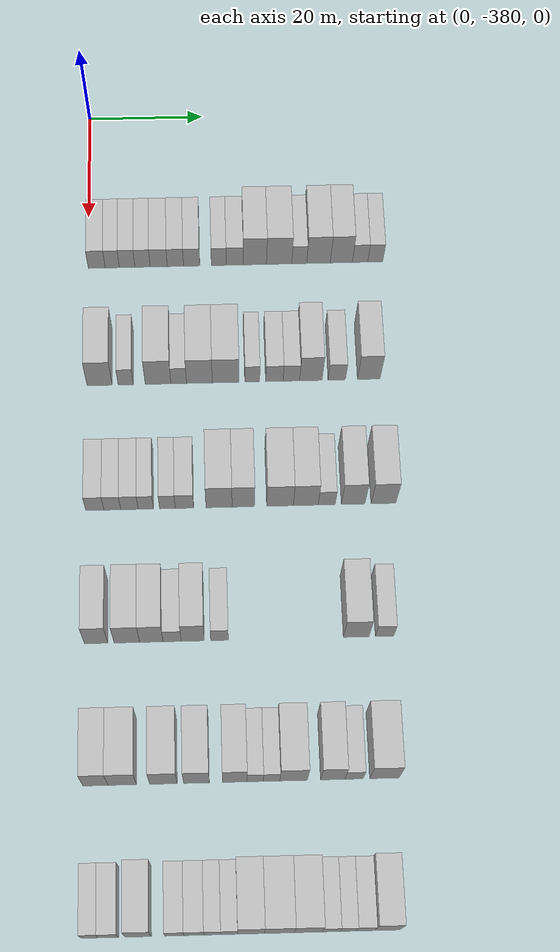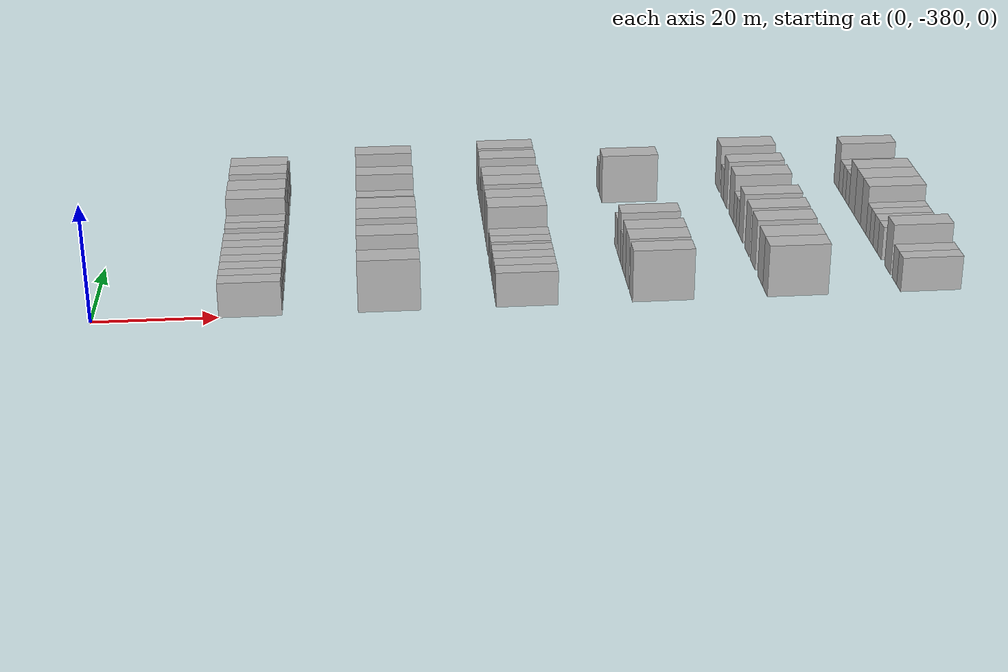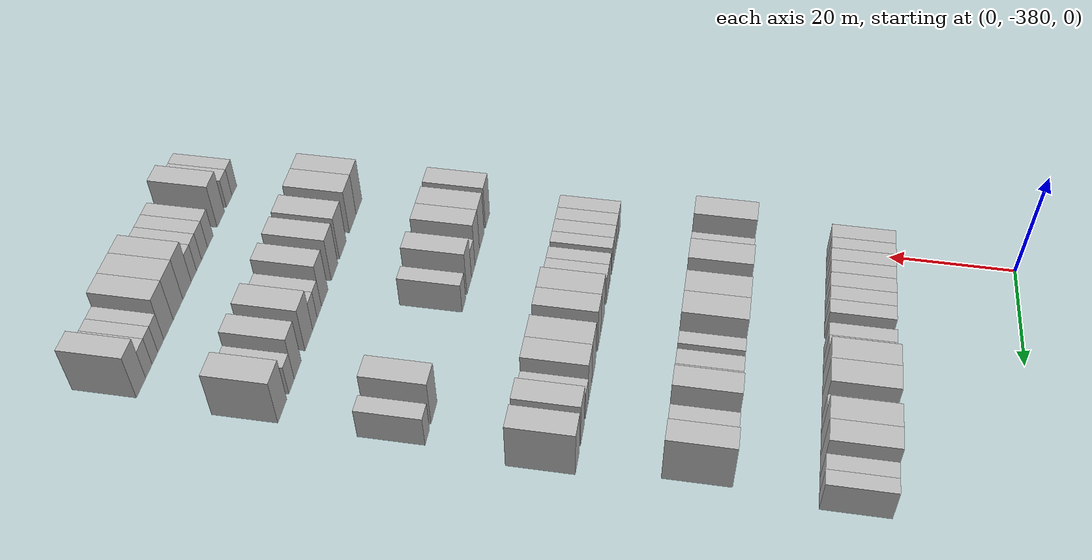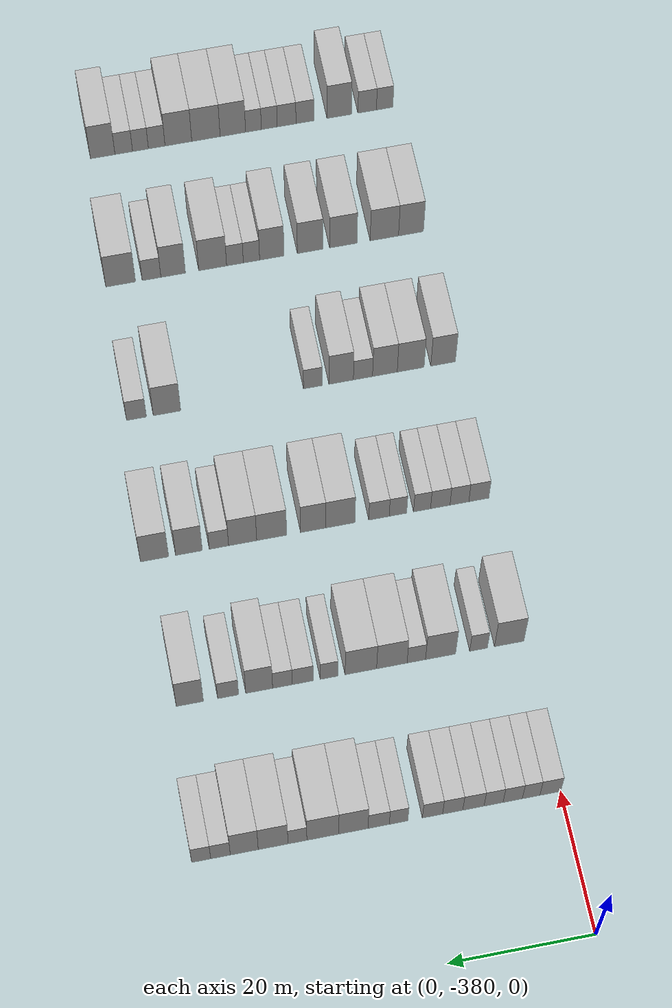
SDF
<sdf version="1.6">
 <world name="default">
  <model name="building_1">
   <static>1</static>
   <pose>25.0000 -378.5527 0 0.000000 0.000000 0.000000</pose>
   <link name="link">
    <pose>0 0 3.00 0 0 0</pose>
    <collision name="collision"><geometry><box><size>10.0000 2.8945 6.0000</size></box></geometry></collision>
    <visual name="visual">
     <cast_shadows>0</cast_shadows>
     <geometry><box><size>10.0000 2.8945 6.0000</size></box></geometry>
     <material>
      <script>
       <uri>model://HANNAS_wall/materials/scripts</uri>
       <uri>model://HANNAS_wall/materials/textures</uri>
       <name>vrc/HANNAS_wall</name>
      </script>
     </material>
    </visual>
   </link>
  </model>
  <model name="building_2">
   <static>1</static>
   <pose>25.0000 -375.8927 0 0.000000 0.000000 0.000000</pose>
   <link name="link">
    <pose>0 0 3.00 0 0 0</pose>
    <collision name="collision"><geometry><box><size>10.0000 2.4257 6.0000</size></box></geometry></collision>
    <visual name="visual">
     <cast_shadows>0</cast_shadows>
     <geometry><box><size>10.0000 2.4257 6.0000</size></box></geometry>
     <material>
      <script>
       <uri>model://HANNAS_wall/materials/scripts</uri>
       <uri>model://HANNAS_wall/materials/textures</uri>
       <name>vrc/HANNAS_wall</name>
      </script>
     </material>
    </visual>
   </link>
  </model>
  <model name="building_3">
   <static>1</static>
   <pose>25.0000 -373.3480 0 0.000000 0.000000 0.000000</pose>
   <link name="link">
    <pose>0 0 3.00 0 0 0</pose>
    <collision name="collision"><geometry><box><size>10.0000 2.6636 6.0000</size></box></geometry></collision>
    <visual name="visual">
     <cast_shadows>0</cast_shadows>
     <geometry><box><size>10.0000 2.6636 6.0000</size></box></geometry>
     <material>
      <script>
       <uri>model://HANNAS_wall/materials/scripts</uri>
       <uri>model://HANNAS_wall/materials/textures</uri>
       <name>vrc/HANNAS_wall</name>
      </script>
     </material>
    </visual>
   </link>
  </model>
  <model name="building_4">
   <static>1</static>
   <pose>25.0000 -370.7058 0 0.000000 0.000000 0.000000</pose>
   <link name="link">
    <pose>0 0 3.00 0 0 0</pose>
    <collision name="collision"><geometry><box><size>10.0000 2.6210 6.0000</size></box></geometry></collision>
    <visual name="visual">
     <cast_shadows>0</cast_shadows>
     <geometry><box><size>10.0000 2.6210 6.0000</size></box></geometry>
     <material>
      <script>
       <uri>model://HANNAS_wall/materials/scripts</uri>
       <uri>model://HANNAS_wall/materials/textures</uri>
       <name>vrc/HANNAS_wall</name>
      </script>
     </material>
    </visual>
   </link>
  </model>
  <model name="building_5">
   <static>1</static>
   <pose>25.0000 -367.9241 0 0.000000 0.000000 0.000000</pose>
   <link name="link">
    <pose>0 0 3.00 0 0 0</pose>
    <collision name="collision"><geometry><box><size>10.0000 2.9424 6.0000</size></box></geometry></collision>
    <visual name="visual">
     <cast_shadows>0</cast_shadows>
     <geometry><box><size>10.0000 2.9424 6.0000</size></box></geometry>
     <material>
      <script>
       <uri>model://HANNAS_wall/materials/scripts</uri>
       <uri>model://HANNAS_wall/materials/textures</uri>
       <name>vrc/HANNAS_wall</name>
      </script>
     </material>
    </visual>
   </link>
  </model>
  <model name="building_6">
   <static>1</static>
   <pose>25.0000 -365.0623 0 0.000000 0.000000 0.000000</pose>
   <link name="link">
    <pose>0 0 3.00 0 0 0</pose>
    <collision name="collision"><geometry><box><size>10.0000 2.7812 6.0000</size></box></geometry></collision>
    <visual name="visual">
     <cast_shadows>0</cast_shadows>
     <geometry><box><size>10.0000 2.7812 6.0000</size></box></geometry>
     <material>
      <script>
       <uri>model://HANNAS_wall/materials/scripts</uri>
       <uri>model://HANNAS_wall/materials/textures</uri>
       <name>vrc/HANNAS_wall</name>
      </script>
     </material>
    </visual>
   </link>
  </model>
  <model name="building_7">
   <static>1</static>
   <pose>25.0000 -362.2778 0 0.000000 0.000000 0.000000</pose>
   <link name="link">
    <pose>0 0 3.00 0 0 0</pose>
    <collision name="collision"><geometry><box><size>10.0000 2.7878 6.0000</size></box></geometry></collision>
    <visual name="visual">
     <cast_shadows>0</cast_shadows>
     <geometry><box><size>10.0000 2.7878 6.0000</size></box></geometry>
     <material>
      <script>
       <uri>model://HANNAS_wall/materials/scripts</uri>
       <uri>model://HANNAS_wall/materials/textures</uri>
       <name>vrc/HANNAS_wall</name>
      </script>
     </material>
    </visual>
   </link>
  </model>
  <model name="building_8">
   <static>1</static>
   <pose>25.0000 -357.6160 0 0.000000 0.000000 0.000000</pose>
   <link name="link">
    <pose>0 0 3.00 0 0 0</pose>
    <collision name="collision"><geometry><box><size>10.0000 2.5359 6.0000</size></box></geometry></collision>
    <visual name="visual">
     <cast_shadows>0</cast_shadows>
     <geometry><box><size>10.0000 2.5359 6.0000</size></box></geometry>
     <material>
      <script>
       <uri>model://HANNAS_wall/materials/scripts</uri>
       <uri>model://HANNAS_wall/materials/textures</uri>
       <name>vrc/HANNAS_wall</name>
      </script>
     </material>
    </visual>
   </link>
  </model>
  <model name="building_9">
   <static>1</static>
   <pose>25.0000 -354.8854 0 0.000000 0.000000 0.000000</pose>
   <link name="link">
    <pose>0 0 3.00 0 0 0</pose>
    <collision name="collision"><geometry><box><size>10.0000 2.9253 6.0000</size></box></geometry></collision>
    <visual name="visual">
     <cast_shadows>0</cast_shadows>
     <geometry><box><size>10.0000 2.9253 6.0000</size></box></geometry>
     <material>
      <script>
       <uri>model://HANNAS_wall/materials/scripts</uri>
       <uri>model://HANNAS_wall/materials/textures</uri>
       <name>vrc/HANNAS_wall</name>
      </script>
     </material>
    </visual>
   </link>
  </model>
  <model name="building_10">
   <static>1</static>
   <pose>25.0000 -351.4184 0 0.000000 0.000000 0.000000</pose>
   <link name="link">
    <pose>0 0 4.50 0 0 0</pose>
    <collision name="collision"><geometry><box><size>10.0000 4.0086 9.0000</size></box></geometry></collision>
    <visual name="visual">
     <cast_shadows>0</cast_shadows>
     <geometry><box><size>10.0000 4.0086 9.0000</size></box></geometry>
     <material>
      <script>
       <uri>model://HANNAS_wall/materials/scripts</uri>
       <uri>model://HANNAS_wall/materials/textures</uri>
       <name>vrc/HANNAS_wall</name>
      </script>
     </material>
    </visual>
   </link>
  </model>
  <model name="building_11">
   <static>1</static>
   <pose>25.0000 -347.2415 0 0.000000 0.000000 0.000000</pose>
   <link name="link">
    <pose>0 0 4.50 0 0 0</pose>
    <collision name="collision"><geometry><box><size>10.0000 4.3452 9.0000</size></box></geometry></collision>
    <visual name="visual">
     <cast_shadows>0</cast_shadows>
     <geometry><box><size>10.0000 4.3452 9.0000</size></box></geometry>
     <material>
      <script>
       <uri>model://HANNAS_wall/materials/scripts</uri>
       <uri>model://HANNAS_wall/materials/textures</uri>
       <name>vrc/HANNAS_wall</name>
      </script>
     </material>
    </visual>
   </link>
  </model>
  <model name="building_12">
   <static>1</static>
   <pose>25.0000 -343.7800 0 0.000000 0.000000 0.000000</pose>
   <link name="link">
    <pose>0 0 3.00 0 0 0</pose>
    <collision name="collision"><geometry><box><size>10.0000 2.5778 6.0000</size></box></geometry></collision>
    <visual name="visual">
     <cast_shadows>0</cast_shadows>
     <geometry><box><size>10.0000 2.5778 6.0000</size></box></geometry>
     <material>
      <script>
       <uri>model://HANNAS_wall/materials/scripts</uri>
       <uri>model://HANNAS_wall/materials/textures</uri>
       <name>vrc/HANNAS_wall</name>
      </script>
     </material>
    </visual>
   </link>
  </model>
  <model name="building_13">
   <static>1</static>
   <pose>25.0000 -340.4681 0 0.000000 0.000000 0.000000</pose>
   <link name="link">
    <pose>0 0 4.50 0 0 0</pose>
    <collision name="collision"><geometry><box><size>10.0000 4.0458 9.0000</size></box></geometry></collision>
    <visual name="visual">
     <cast_shadows>0</cast_shadows>
     <geometry><box><size>10.0000 4.0458 9.0000</size></box></geometry>
     <material>
      <script>
       <uri>model://HANNAS_wall/materials/scripts</uri>
       <uri>model://HANNAS_wall/materials/textures</uri>
       <name>vrc/HANNAS_wall</name>
      </script>
     </material>
    </visual>
   </link>
  </model>
  <model name="building_14">
   <static>1</static>
   <pose>25.0000 -336.5463 0 0.000000 0.000000 0.000000</pose>
   <link name="link">
    <pose>0 0 4.50 0 0 0</pose>
    <collision name="collision"><geometry><box><size>10.0000 3.7979 9.0000</size></box></geometry></collision>
    <visual name="visual">
     <cast_shadows>0</cast_shadows>
     <geometry><box><size>10.0000 3.7979 9.0000</size></box></geometry>
     <material>
      <script>
       <uri>model://HANNAS_wall/materials/scripts</uri>
       <uri>model://HANNAS_wall/materials/textures</uri>
       <name>vrc/HANNAS_wall</name>
      </script>
     </material>
    </visual>
   </link>
  </model>
  <model name="building_15">
   <static>1</static>
   <pose>25.0000 -333.3192 0 0.000000 0.000000 0.000000</pose>
   <link name="link">
    <pose>0 0 3.00 0 0 0</pose>
    <collision name="collision"><geometry><box><size>10.0000 2.6563 6.0000</size></box></geometry></collision>
    <visual name="visual">
     <cast_shadows>0</cast_shadows>
     <geometry><box><size>10.0000 2.6563 6.0000</size></box></geometry>
     <material>
      <script>
       <uri>model://HANNAS_wall/materials/scripts</uri>
       <uri>model://HANNAS_wall/materials/textures</uri>
       <name>vrc/HANNAS_wall</name>
      </script>
     </material>
    </visual>
   </link>
  </model>
  <model name="building_16">
   <static>1</static>
   <pose>25.0000 -330.6986 0 0.000000 0.000000 0.000000</pose>
   <link name="link">
    <pose>0 0 3.00 0 0 0</pose>
    <collision name="collision"><geometry><box><size>10.0000 2.5851 6.0000</size></box></geometry></collision>
    <visual name="visual">
     <cast_shadows>0</cast_shadows>
     <geometry><box><size>10.0000 2.5851 6.0000</size></box></geometry>
     <material>
      <script>
       <uri>model://HANNAS_wall/materials/scripts</uri>
       <uri>model://HANNAS_wall/materials/textures</uri>
       <name>vrc/HANNAS_wall</name>
      </script>
     </material>
    </visual>
   </link>
  </model>
  <model name="building_195">
   <static>1</static>
   <pose>47.0000 -377.9148 0 0.000000 0.000000 0.000000</pose>
   <link name="link">
    <pose>0 0 4.50 0 0 0</pose>
    <collision name="collision"><geometry><box><size>10.0000 4.1705 9.0000</size></box></geometry></collision>
    <visual name="visual">
     <cast_shadows>0</cast_shadows>
     <geometry><box><size>10.0000 4.1705 9.0000</size></box></geometry>
     <material>
      <script>
       <uri>model://HANNAS_wall/materials/scripts</uri>
       <uri>model://HANNAS_wall/materials/textures</uri>
       <name>vrc/HANNAS_wall</name>
      </script>
     </material>
    </visual>
   </link>
  </model>
  <model name="building_196">
   <static>1</static>
   <pose>47.0000 -373.5758 0 0.000000 0.000000 0.000000</pose>
   <link name="link">
    <pose>0 0 3.00 0 0 0</pose>
    <collision name="collision"><geometry><box><size>10.0000 2.5076 6.0000</size></box></geometry></collision>
    <visual name="visual">
     <cast_shadows>0</cast_shadows>
     <geometry><box><size>10.0000 2.5076 6.0000</size></box></geometry>
     <material>
      <script>
       <uri>model://HANNAS_wall/materials/scripts</uri>
       <uri>model://HANNAS_wall/materials/textures</uri>
       <name>vrc/HANNAS_wall</name>
      </script>
     </material>
    </visual>
   </link>
  </model>
  <model name="building_197">
   <static>1</static>
   <pose>47.0000 -368.1948 0 0.000000 0.000000 0.000000</pose>
   <link name="link">
    <pose>0 0 4.50 0 0 0</pose>
    <collision name="collision"><geometry><box><size>10.0000 4.2543 9.0000</size></box></geometry></collision>
    <visual name="visual">
     <cast_shadows>0</cast_shadows>
     <geometry><box><size>10.0000 4.2543 9.0000</size></box></geometry>
     <material>
      <script>
       <uri>model://HANNAS_wall/materials/scripts</uri>
       <uri>model://HANNAS_wall/materials/textures</uri>
       <name>vrc/HANNAS_wall</name>
      </script>
     </material>
    </visual>
   </link>
  </model>
  <model name="building_198">
   <static>1</static>
   <pose>47.0000 -364.7696 0 0.000000 0.000000 0.000000</pose>
   <link name="link">
    <pose>0 0 3.00 0 0 0</pose>
    <collision name="collision"><geometry><box><size>10.0000 2.5960 6.0000</size></box></geometry></collision>
    <visual name="visual">
     <cast_shadows>0</cast_shadows>
     <geometry><box><size>10.0000 2.5960 6.0000</size></box></geometry>
     <material>
      <script>
       <uri>model://HANNAS_wall/materials/scripts</uri>
       <uri>model://HANNAS_wall/materials/textures</uri>
       <name>vrc/HANNAS_wall</name>
      </script>
     </material>
    </visual>
   </link>
  </model>
  <model name="building_199">
   <static>1</static>
   <pose>47.0000 -361.3244 0 0.000000 0.000000 0.000000</pose>
   <link name="link">
    <pose>0 0 4.50 0 0 0</pose>
    <collision name="collision"><geometry><box><size>10.0000 4.2946 9.0000</size></box></geometry></collision>
    <visual name="visual">
     <cast_shadows>0</cast_shadows>
     <geometry><box><size>10.0000 4.2946 9.0000</size></box></geometry>
     <material>
      <script>
       <uri>model://HANNAS_wall/materials/scripts</uri>
       <uri>model://HANNAS_wall/materials/textures</uri>
       <name>vrc/HANNAS_wall</name>
      </script>
     </material>
    </visual>
   </link>
  </model>
  <model name="building_200">
   <static>1</static>
   <pose>47.0000 -356.9594 0 0.000000 0.000000 0.000000</pose>
   <link name="link">
    <pose>0 0 4.50 0 0 0</pose>
    <collision name="collision"><geometry><box><size>10.0000 4.4353 9.0000</size></box></geometry></collision>
    <visual name="visual">
     <cast_shadows>0</cast_shadows>
     <geometry><box><size>10.0000 4.4353 9.0000</size></box></geometry>
     <material>
      <script>
       <uri>model://HANNAS_wall/materials/scripts</uri>
       <uri>model://HANNAS_wall/materials/textures</uri>
       <name>vrc/HANNAS_wall</name>
      </script>
     </material>
    </visual>
   </link>
  </model>
  <model name="building_201">
   <static>1</static>
   <pose>47.0000 -352.5059 0 0.000000 0.000000 0.000000</pose>
   <link name="link">
    <pose>0 0 3.00 0 0 0</pose>
    <collision name="collision"><geometry><box><size>10.0000 2.4718 6.0000</size></box></geometry></collision>
    <visual name="visual">
     <cast_shadows>0</cast_shadows>
     <geometry><box><size>10.0000 2.4718 6.0000</size></box></geometry>
     <material>
      <script>
       <uri>model://HANNAS_wall/materials/scripts</uri>
       <uri>model://HANNAS_wall/materials/textures</uri>
       <name>vrc/HANNAS_wall</name>
      </script>
     </material>
    </visual>
   </link>
  </model>
  <model name="building_202">
   <static>1</static>
   <pose>47.0000 -348.8133 0 0.000000 0.000000 0.000000</pose>
   <link name="link">
    <pose>0 0 3.00 0 0 0</pose>
    <collision name="collision"><geometry><box><size>10.0000 2.9135 6.0000</size></box></geometry></collision>
    <visual name="visual">
     <cast_shadows>0</cast_shadows>
     <geometry><box><size>10.0000 2.9135 6.0000</size></box></geometry>
     <material>
      <script>
       <uri>model://HANNAS_wall/materials/scripts</uri>
       <uri>model://HANNAS_wall/materials/textures</uri>
       <name>vrc/HANNAS_wall</name>
      </script>
     </material>
    </visual>
   </link>
  </model>
  <model name="building_203">
   <static>1</static>
   <pose>47.0000 -345.9820 0 0.000000 0.000000 0.000000</pose>
   <link name="link">
    <pose>0 0 3.00 0 0 0</pose>
    <collision name="collision"><geometry><box><size>10.0000 2.7490 6.0000</size></box></geometry></collision>
    <visual name="visual">
     <cast_shadows>0</cast_shadows>
     <geometry><box><size>10.0000 2.7490 6.0000</size></box></geometry>
     <material>
      <script>
       <uri>model://HANNAS_wall/materials/scripts</uri>
       <uri>model://HANNAS_wall/materials/textures</uri>
       <name>vrc/HANNAS_wall</name>
      </script>
     </material>
    </visual>
   </link>
  </model>
  <model name="building_204">
   <static>1</static>
   <pose>47.0000 -342.7306 0 0.000000 0.000000 0.000000</pose>
   <link name="link">
    <pose>0 0 4.50 0 0 0</pose>
    <collision name="collision"><geometry><box><size>10.0000 3.7538 9.0000</size></box></geometry></collision>
    <visual name="visual">
     <cast_shadows>0</cast_shadows>
     <geometry><box><size>10.0000 3.7538 9.0000</size></box></geometry>
     <material>
      <script>
       <uri>model://HANNAS_wall/materials/scripts</uri>
       <uri>model://HANNAS_wall/materials/textures</uri>
       <name>vrc/HANNAS_wall</name>
      </script>
     </material>
    </visual>
   </link>
  </model>
  <model name="building_205">
   <static>1</static>
   <pose>47.0000 -338.3987 0 0.000000 0.000000 0.000000</pose>
   <link name="link">
    <pose>0 0 3.00 0 0 0</pose>
    <collision name="collision"><geometry><box><size>10.0000 2.9100 6.0000</size></box></geometry></collision>
    <visual name="visual">
     <cast_shadows>0</cast_shadows>
     <geometry><box><size>10.0000 2.9100 6.0000</size></box></geometry>
     <material>
      <script>
       <uri>model://HANNAS_wall/materials/scripts</uri>
       <uri>model://HANNAS_wall/materials/textures</uri>
       <name>vrc/HANNAS_wall</name>
      </script>
     </material>
    </visual>
   </link>
  </model>
  <model name="building_206">
   <static>1</static>
   <pose>47.0000 -333.0621 0 0.000000 0.000000 0.000000</pose>
   <link name="link">
    <pose>0 0 4.50 0 0 0</pose>
    <collision name="collision"><geometry><box><size>10.0000 3.7633 9.0000</size></box></geometry></collision>
    <visual name="visual">
     <cast_shadows>0</cast_shadows>
     <geometry><box><size>10.0000 3.7633 9.0000</size></box></geometry>
     <material>
      <script>
       <uri>model://HANNAS_wall/materials/scripts</uri>
       <uri>model://HANNAS_wall/materials/textures</uri>
       <name>vrc/HANNAS_wall</name>
      </script>
     </material>
    </visual>
   </link>
  </model>
  <model name="building_380">
   <static>1</static>
   <pose>69.0000 -378.5504 0 0.000000 0.000000 0.000000</pose>
   <link name="link">
    <pose>0 0 3.00 0 0 0</pose>
    <collision name="collision"><geometry><box><size>10.0000 2.8992 6.0000</size></box></geometry></collision>
    <visual name="visual">
     <cast_shadows>0</cast_shadows>
     <geometry><box><size>10.0000 2.8992 6.0000</size></box></geometry>
     <material>
      <script>
       <uri>model://HANNAS_wall/materials/scripts</uri>
       <uri>model://HANNAS_wall/materials/textures</uri>
       <name>vrc/HANNAS_wall</name>
      </script>
     </material>
    </visual>
   </link>
  </model>
  <model name="building_381">
   <static>1</static>
   <pose>69.0000 -375.7349 0 0.000000 0.000000 0.000000</pose>
   <link name="link">
    <pose>0 0 3.00 0 0 0</pose>
    <collision name="collision"><geometry><box><size>10.0000 2.7317 6.0000</size></box></geometry></collision>
    <visual name="visual">
     <cast_shadows>0</cast_shadows>
     <geometry><box><size>10.0000 2.7317 6.0000</size></box></geometry>
     <material>
      <script>
       <uri>model://HANNAS_wall/materials/scripts</uri>
       <uri>model://HANNAS_wall/materials/textures</uri>
       <name>vrc/HANNAS_wall</name>
      </script>
     </material>
    </visual>
   </link>
  </model>
  <model name="building_382">
   <static>1</static>
   <pose>69.0000 -372.9590 0 0.000000 0.000000 0.000000</pose>
   <link name="link">
    <pose>0 0 3.00 0 0 0</pose>
    <collision name="collision"><geometry><box><size>10.0000 2.8202 6.0000</size></box></geometry></collision>
    <visual name="visual">
     <cast_shadows>0</cast_shadows>
     <geometry><box><size>10.0000 2.8202 6.0000</size></box></geometry>
     <material>
      <script>
       <uri>model://HANNAS_wall/materials/scripts</uri>
       <uri>model://HANNAS_wall/materials/textures</uri>
       <name>vrc/HANNAS_wall</name>
      </script>
     </material>
    </visual>
   </link>
  </model>
  <model name="building_383">
   <static>1</static>
   <pose>69.0000 -370.3206 0 0.000000 0.000000 0.000000</pose>
   <link name="link">
    <pose>0 0 3.00 0 0 0</pose>
    <collision name="collision"><geometry><box><size>10.0000 2.4566 6.0000</size></box></geometry></collision>
    <visual name="visual">
     <cast_shadows>0</cast_shadows>
     <geometry><box><size>10.0000 2.4566 6.0000</size></box></geometry>
     <material>
      <script>
       <uri>model://HANNAS_wall/materials/scripts</uri>
       <uri>model://HANNAS_wall/materials/textures</uri>
       <name>vrc/HANNAS_wall</name>
      </script>
     </material>
    </visual>
   </link>
  </model>
  <model name="building_384">
   <static>1</static>
   <pose>69.0000 -366.8321 0 0.000000 0.000000 0.000000</pose>
   <link name="link">
    <pose>0 0 3.00 0 0 0</pose>
    <collision name="collision"><geometry><box><size>10.0000 2.5205 6.0000</size></box></geometry></collision>
    <visual name="visual">
     <cast_shadows>0</cast_shadows>
     <geometry><box><size>10.0000 2.5205 6.0000</size></box></geometry>
     <material>
      <script>
       <uri>model://HANNAS_wall/materials/scripts</uri>
       <uri>model://HANNAS_wall/materials/textures</uri>
       <name>vrc/HANNAS_wall</name>
      </script>
     </material>
    </visual>
   </link>
  </model>
  <model name="building_385">
   <static>1</static>
   <pose>69.0000 -364.0967 0 0.000000 0.000000 0.000000</pose>
   <link name="link">
    <pose>0 0 3.00 0 0 0</pose>
    <collision name="collision"><geometry><box><size>10.0000 2.9502 6.0000</size></box></geometry></collision>
    <visual name="visual">
     <cast_shadows>0</cast_shadows>
     <geometry><box><size>10.0000 2.9502 6.0000</size></box></geometry>
     <material>
      <script>
       <uri>model://HANNAS_wall/materials/scripts</uri>
       <uri>model://HANNAS_wall/materials/textures</uri>
       <name>vrc/HANNAS_wall</name>
      </script>
     </material>
    </visual>
   </link>
  </model>
  <model name="building_386">
   <static>1</static>
   <pose>69.0000 -358.5275 0 0.000000 0.000000 0.000000</pose>
   <link name="link">
    <pose>0 0 4.50 0 0 0</pose>
    <collision name="collision"><geometry><box><size>10.0000 4.1882 9.0000</size></box></geometry></collision>
    <visual name="visual">
     <cast_shadows>0</cast_shadows>
     <geometry><box><size>10.0000 4.1882 9.0000</size></box></geometry>
     <material>
      <script>
       <uri>model://HANNAS_wall/materials/scripts</uri>
       <uri>model://HANNAS_wall/materials/textures</uri>
       <name>vrc/HANNAS_wall</name>
      </script>
     </material>
    </visual>
   </link>
  </model>
  <model name="building_387">
   <static>1</static>
   <pose>69.0000 -354.6218 0 0.000000 0.000000 0.000000</pose>
   <link name="link">
    <pose>0 0 4.50 0 0 0</pose>
    <collision name="collision"><geometry><box><size>10.0000 3.6233 9.0000</size></box></geometry></collision>
    <visual name="visual">
     <cast_shadows>0</cast_shadows>
     <geometry><box><size>10.0000 3.6233 9.0000</size></box></geometry>
     <material>
      <script>
       <uri>model://HANNAS_wall/materials/scripts</uri>
       <uri>model://HANNAS_wall/materials/textures</uri>
       <name>vrc/HANNAS_wall</name>
      </script>
     </material>
    </visual>
   </link>
  </model>
  <model name="building_388">
   <static>1</static>
   <pose>69.0000 -348.6689 0 0.000000 0.000000 0.000000</pose>
   <link name="link">
    <pose>0 0 4.50 0 0 0</pose>
    <collision name="collision"><geometry><box><size>10.0000 4.2824 9.0000</size></box></geometry></collision>
    <visual name="visual">
     <cast_shadows>0</cast_shadows>
     <geometry><box><size>10.0000 4.2824 9.0000</size></box></geometry>
     <material>
      <script>
       <uri>model://HANNAS_wall/materials/scripts</uri>
       <uri>model://HANNAS_wall/materials/textures</uri>
       <name>vrc/HANNAS_wall</name>
      </script>
     </material>
    </visual>
   </link>
  </model>
  <model name="building_389">
   <static>1</static>
   <pose>69.0000 -344.5148 0 0.000000 0.000000 0.000000</pose>
   <link name="link">
    <pose>0 0 4.50 0 0 0</pose>
    <collision name="collision"><geometry><box><size>10.0000 4.0257 9.0000</size></box></geometry></collision>
    <visual name="visual">
     <cast_shadows>0</cast_shadows>
     <geometry><box><size>10.0000 4.0257 9.0000</size></box></geometry>
     <material>
      <script>
       <uri>model://HANNAS_wall/materials/scripts</uri>
       <uri>model://HANNAS_wall/materials/textures</uri>
       <name>vrc/HANNAS_wall</name>
      </script>
     </material>
    </visual>
   </link>
  </model>
  <model name="building_390">
   <static>1</static>
   <pose>69.0000 -341.1238 0 0.000000 0.000000 0.000000</pose>
   <link name="link">
    <pose>0 0 3.00 0 0 0</pose>
    <collision name="collision"><geometry><box><size>10.0000 2.7564 6.0000</size></box></geometry></collision>
    <visual name="visual">
     <cast_shadows>0</cast_shadows>
     <geometry><box><size>10.0000 2.7564 6.0000</size></box></geometry>
     <material>
      <script>
       <uri>model://HANNAS_wall/materials/scripts</uri>
       <uri>model://HANNAS_wall/materials/textures</uri>
       <name>vrc/HANNAS_wall</name>
      </script>
     </material>
    </visual>
   </link>
  </model>
  <model name="building_391">
   <static>1</static>
   <pose>69.0000 -336.8450 0 0.000000 0.000000 0.000000</pose>
   <link name="link">
    <pose>0 0 4.50 0 0 0</pose>
    <collision name="collision"><geometry><box><size>10.0000 3.8011 9.0000</size></box></geometry></collision>
    <visual name="visual">
     <cast_shadows>0</cast_shadows>
     <geometry><box><size>10.0000 3.8011 9.0000</size></box></geometry>
     <material>
      <script>
       <uri>model://HANNAS_wall/materials/scripts</uri>
       <uri>model://HANNAS_wall/materials/textures</uri>
       <name>vrc/HANNAS_wall</name>
      </script>
     </material>
    </visual>
   </link>
  </model>
  <model name="building_392">
   <static>1</static>
   <pose>69.0000 -331.9392 0 0.000000 0.000000 0.000000</pose>
   <link name="link">
    <pose>0 0 4.50 0 0 0</pose>
    <collision name="collision"><geometry><box><size>10.0000 4.0106 9.0000</size></box></geometry></collision>
    <visual name="visual">
     <cast_shadows>0</cast_shadows>
     <geometry><box><size>10.0000 4.0106 9.0000</size></box></geometry>
     <material>
      <script>
       <uri>model://HANNAS_wall/materials/scripts</uri>
       <uri>model://HANNAS_wall/materials/textures</uri>
       <name>vrc/HANNAS_wall</name>
      </script>
     </material>
    </visual>
   </link>
  </model>
  <model name="building_573">
   <static>1</static>
   <pose>91.0000 -378.1768 0 0.000000 0.000000 0.000000</pose>
   <link name="link">
    <pose>0 0 4.50 0 0 0</pose>
    <collision name="collision"><geometry><box><size>10.0000 3.6464 9.0000</size></box></geometry></collision>
    <visual name="visual">
     <cast_shadows>0</cast_shadows>
     <geometry><box><size>10.0000 3.6464 9.0000</size></box></geometry>
     <material>
      <script>
       <uri>model://HANNAS_wall/materials/scripts</uri>
       <uri>model://HANNAS_wall/materials/textures</uri>
       <name>vrc/HANNAS_wall</name>
      </script>
     </material>
    </visual>
   </link>
  </model>
  <model name="building_574">
   <static>1</static>
   <pose>91.0000 -373.3660 0 0.000000 0.000000 0.000000</pose>
   <link name="link">
    <pose>0 0 4.50 0 0 0</pose>
    <collision name="collision"><geometry><box><size>10.0000 3.9752 9.0000</size></box></geometry></collision>
    <visual name="visual">
     <cast_shadows>0</cast_shadows>
     <geometry><box><size>10.0000 3.9752 9.0000</size></box></geometry>
     <material>
      <script>
       <uri>model://HANNAS_wall/materials/scripts</uri>
       <uri>model://HANNAS_wall/materials/textures</uri>
       <name>vrc/HANNAS_wall</name>
      </script>
     </material>
    </visual>
   </link>
  </model>
  <model name="building_575">
   <static>1</static>
   <pose>91.0000 -369.5500 0 0.000000 0.000000 0.000000</pose>
   <link name="link">
    <pose>0 0 4.50 0 0 0</pose>
    <collision name="collision"><geometry><box><size>10.0000 3.6569 9.0000</size></box></geometry></collision>
    <visual name="visual">
     <cast_shadows>0</cast_shadows>
     <geometry><box><size>10.0000 3.6569 9.0000</size></box></geometry>
     <material>
      <script>
       <uri>model://HANNAS_wall/materials/scripts</uri>
       <uri>model://HANNAS_wall/materials/textures</uri>
       <name>vrc/HANNAS_wall</name>
      </script>
     </material>
    </visual>
   </link>
  </model>
  <model name="building_576">
   <static>1</static>
   <pose>91.0000 -366.3084 0 0.000000 0.000000 0.000000</pose>
   <link name="link">
    <pose>0 0 3.00 0 0 0</pose>
    <collision name="collision"><geometry><box><size>10.0000 2.8262 6.0000</size></box></geometry></collision>
    <visual name="visual">
     <cast_shadows>0</cast_shadows>
     <geometry><box><size>10.0000 2.8262 6.0000</size></box></geometry>
     <material>
      <script>
       <uri>model://HANNAS_wall/materials/scripts</uri>
       <uri>model://HANNAS_wall/materials/textures</uri>
       <name>vrc/HANNAS_wall</name>
      </script>
     </material>
    </visual>
   </link>
  </model>
  <model name="building_577">
   <static>1</static>
   <pose>91.0000 -363.0922 0 0.000000 0.000000 0.000000</pose>
   <link name="link">
    <pose>0 0 4.50 0 0 0</pose>
    <collision name="collision"><geometry><box><size>10.0000 3.6061 9.0000</size></box></geometry></collision>
    <visual name="visual">
     <cast_shadows>0</cast_shadows>
     <geometry><box><size>10.0000 3.6061 9.0000</size></box></geometry>
     <material>
      <script>
       <uri>model://HANNAS_wall/materials/scripts</uri>
       <uri>model://HANNAS_wall/materials/textures</uri>
       <name>vrc/HANNAS_wall</name>
      </script>
     </material>
    </visual>
   </link>
  </model>
  <model name="building_578">
   <static>1</static>
   <pose>91.0000 -358.9130 0 0.000000 0.000000 0.000000</pose>
   <link name="link">
    <pose>0 0 3.00 0 0 0</pose>
    <collision name="collision"><geometry><box><size>10.0000 2.7523 6.0000</size></box></geometry></collision>
    <visual name="visual">
     <cast_shadows>0</cast_shadows>
     <geometry><box><size>10.0000 2.7523 6.0000</size></box></geometry>
     <material>
      <script>
       <uri>model://HANNAS_wall/materials/scripts</uri>
       <uri>model://HANNAS_wall/materials/textures</uri>
       <name>vrc/HANNAS_wall</name>
      </script>
     </material>
    </visual>
   </link>
  </model>
  <model name="building_579">
   <static>1</static>
   <pose>91.0000 -337.5340 0 0.000000 0.000000 0.000000</pose>
   <link name="link">
    <pose>0 0 4.50 0 0 0</pose>
    <collision name="collision"><geometry><box><size>10.0000 4.0019 9.0000</size></box></geometry></collision>
    <visual name="visual">
     <cast_shadows>0</cast_shadows>
     <geometry><box><size>10.0000 4.0019 9.0000</size></box></geometry>
     <material>
      <script>
       <uri>model://HANNAS_wall/materials/scripts</uri>
       <uri>model://HANNAS_wall/materials/textures</uri>
       <name>vrc/HANNAS_wall</name>
      </script>
     </material>
    </visual>
   </link>
  </model>
  <model name="building_580">
   <static>1</static>
   <pose>91.0000 -333.0853 0 0.000000 0.000000 0.000000</pose>
   <link name="link">
    <pose>0 0 3.00 0 0 0</pose>
    <collision name="collision"><geometry><box><size>10.0000 2.8953 6.0000</size></box></geometry></collision>
    <visual name="visual">
     <cast_shadows>0</cast_shadows>
     <geometry><box><size>10.0000 2.8953 6.0000</size></box></geometry>
     <material>
      <script>
       <uri>model://HANNAS_wall/materials/scripts</uri>
       <uri>model://HANNAS_wall/materials/textures</uri>
       <name>vrc/HANNAS_wall</name>
      </script>
     </material>
    </visual>
   </link>
  </model>
  <model name="building_745">
   <static>1</static>
   <pose>113.0000 -378.1132 0 0.000000 0.000000 0.000000</pose>
   <link name="link">
    <pose>0 0 4.50 0 0 0</pose>
    <collision name="collision"><geometry><box><size>10.0000 3.7736 9.0000</size></box></geometry></collision>
    <visual name="visual">
     <cast_shadows>0</cast_shadows>
     <geometry><box><size>10.0000 3.7736 9.0000</size></box></geometry>
     <material>
      <script>
       <uri>model://HANNAS_wall/materials/scripts</uri>
       <uri>model://HANNAS_wall/materials/textures</uri>
       <name>vrc/HANNAS_wall</name>
      </script>
     </material>
    </visual>
   </link>
  </model>
  <model name="building_746">
   <static>1</static>
   <pose>113.0000 -374.0739 0 0.000000 0.000000 0.000000</pose>
   <link name="link">
    <pose>0 0 4.50 0 0 0</pose>
    <collision name="collision"><geometry><box><size>10.0000 4.3049 9.0000</size></box></geometry></collision>
    <visual name="visual">
     <cast_shadows>0</cast_shadows>
     <geometry><box><size>10.0000 4.3049 9.0000</size></box></geometry>
     <material>
      <script>
       <uri>model://HANNAS_wall/materials/scripts</uri>
       <uri>model://HANNAS_wall/materials/textures</uri>
       <name>vrc/HANNAS_wall</name>
      </script>
     </material>
    </visual>
   </link>
  </model>
  <model name="building_747">
   <static>1</static>
   <pose>113.0000 -367.8535 0 0.000000 0.000000 0.000000</pose>
   <link name="link">
    <pose>0 0 4.50 0 0 0</pose>
    <collision name="collision"><geometry><box><size>10.0000 4.1359 9.0000</size></box></geometry></collision>
    <visual name="visual">
     <cast_shadows>0</cast_shadows>
     <geometry><box><size>10.0000 4.1359 9.0000</size></box></geometry>
     <material>
      <script>
       <uri>model://HANNAS_wall/materials/scripts</uri>
       <uri>model://HANNAS_wall/materials/textures</uri>
       <name>vrc/HANNAS_wall</name>
      </script>
     </material>
    </visual>
   </link>
  </model>
  <model name="building_748">
   <static>1</static>
   <pose>113.0000 -362.8537 0 0.000000 0.000000 0.000000</pose>
   <link name="link">
    <pose>0 0 4.50 0 0 0</pose>
    <collision name="collision"><geometry><box><size>10.0000 3.8638 9.0000</size></box></geometry></collision>
    <visual name="visual">
     <cast_shadows>0</cast_shadows>
     <geometry><box><size>10.0000 3.8638 9.0000</size></box></geometry>
     <material>
      <script>
       <uri>model://HANNAS_wall/materials/scripts</uri>
       <uri>model://HANNAS_wall/materials/textures</uri>
       <name>vrc/HANNAS_wall</name>
      </script>
     </material>
    </visual>
   </link>
  </model>
  <model name="building_749">
   <static>1</static>
   <pose>113.0000 -357.0854 0 0.000000 0.000000 0.000000</pose>
   <link name="link">
    <pose>0 0 4.50 0 0 0</pose>
    <collision name="collision"><geometry><box><size>10.0000 3.6727 9.0000</size></box></geometry></collision>
    <visual name="visual">
     <cast_shadows>0</cast_shadows>
     <geometry><box><size>10.0000 3.6727 9.0000</size></box></geometry>
     <material>
      <script>
       <uri>model://HANNAS_wall/materials/scripts</uri>
       <uri>model://HANNAS_wall/materials/textures</uri>
       <name>vrc/HANNAS_wall</name>
      </script>
     </material>
    </visual>
   </link>
  </model>
  <model name="building_750">
   <static>1</static>
   <pose>113.0000 -354.0242 0 0.000000 0.000000 0.000000</pose>
   <link name="link">
    <pose>0 0 3.00 0 0 0</pose>
    <collision name="collision"><geometry><box><size>10.0000 2.4497 6.0000</size></box></geometry></collision>
    <visual name="visual">
     <cast_shadows>0</cast_shadows>
     <geometry><box><size>10.0000 2.4497 6.0000</size></box></geometry>
     <material>
      <script>
       <uri>model://HANNAS_wall/materials/scripts</uri>
       <uri>model://HANNAS_wall/materials/textures</uri>
       <name>vrc/HANNAS_wall</name>
      </script>
     </material>
    </visual>
   </link>
  </model>
  <model name="building_751">
   <static>1</static>
   <pose>113.0000 -351.5427 0 0.000000 0.000000 0.000000</pose>
   <link name="link">
    <pose>0 0 3.00 0 0 0</pose>
    <collision name="collision"><geometry><box><size>10.0000 2.5133 6.0000</size></box></geometry></collision>
    <visual name="visual">
     <cast_shadows>0</cast_shadows>
     <geometry><box><size>10.0000 2.5133 6.0000</size></box></geometry>
     <material>
      <script>
       <uri>model://HANNAS_wall/materials/scripts</uri>
       <uri>model://HANNAS_wall/materials/textures</uri>
       <name>vrc/HANNAS_wall</name>
      </script>
     </material>
    </visual>
   </link>
  </model>
  <model name="building_752">
   <static>1</static>
   <pose>113.0000 -348.1999 0 0.000000 0.000000 0.000000</pose>
   <link name="link">
    <pose>0 0 4.50 0 0 0</pose>
    <collision name="collision"><geometry><box><size>10.0000 4.1722 9.0000</size></box></geometry></collision>
    <visual name="visual">
     <cast_shadows>0</cast_shadows>
     <geometry><box><size>10.0000 4.1722 9.0000</size></box></geometry>
     <material>
      <script>
       <uri>model://HANNAS_wall/materials/scripts</uri>
       <uri>model://HANNAS_wall/materials/textures</uri>
       <name>vrc/HANNAS_wall</name>
      </script>
     </material>
    </visual>
   </link>
  </model>
  <model name="building_753">
   <static>1</static>
   <pose>113.0000 -342.2776 0 0.000000 0.000000 0.000000</pose>
   <link name="link">
    <pose>0 0 4.50 0 0 0</pose>
    <collision name="collision"><geometry><box><size>10.0000 3.6724 9.0000</size></box></geometry></collision>
    <visual name="visual">
     <cast_shadows>0</cast_shadows>
     <geometry><box><size>10.0000 3.6724 9.0000</size></box></geometry>
     <material>
      <script>
       <uri>model://HANNAS_wall/materials/scripts</uri>
       <uri>model://HANNAS_wall/materials/textures</uri>
       <name>vrc/HANNAS_wall</name>
      </script>
     </material>
    </visual>
   </link>
  </model>
  <model name="building_754">
   <static>1</static>
   <pose>113.0000 -339.0501 0 0.000000 0.000000 0.000000</pose>
   <link name="link">
    <pose>0 0 3.00 0 0 0</pose>
    <collision name="collision"><geometry><box><size>10.0000 2.7828 6.0000</size></box></geometry></collision>
    <visual name="visual">
     <cast_shadows>0</cast_shadows>
     <geometry><box><size>10.0000 2.7828 6.0000</size></box></geometry>
     <material>
      <script>
       <uri>model://HANNAS_wall/materials/scripts</uri>
       <uri>model://HANNAS_wall/materials/textures</uri>
       <name>vrc/HANNAS_wall</name>
      </script>
     </material>
    </visual>
   </link>
  </model>
  <model name="building_755">
   <static>1</static>
   <pose>113.0000 -334.4402 0 0.000000 0.000000 0.000000</pose>
   <link name="link">
    <pose>0 0 4.50 0 0 0</pose>
    <collision name="collision"><geometry><box><size>10.0000 4.4371 9.0000</size></box></geometry></collision>
    <visual name="visual">
     <cast_shadows>0</cast_shadows>
     <geometry><box><size>10.0000 4.4371 9.0000</size></box></geometry>
     <material>
      <script>
       <uri>model://HANNAS_wall/materials/scripts</uri>
       <uri>model://HANNAS_wall/materials/textures</uri>
       <name>vrc/HANNAS_wall</name>
      </script>
     </material>
    </visual>
   </link>
  </model>
  <model name="building_930">
   <static>1</static>
   <pose>135.0000 -378.7250 0 0.000000 0.000000 0.000000</pose>
   <link name="link">
    <pose>0 0 3.00 0 0 0</pose>
    <collision name="collision"><geometry><box><size>10.0000 2.5501 6.0000</size></box></geometry></collision>
    <visual name="visual">
     <cast_shadows>0</cast_shadows>
     <geometry><box><size>10.0000 2.5501 6.0000</size></box></geometry>
     <material>
      <script>
       <uri>model://HANNAS_wall/materials/scripts</uri>
       <uri>model://HANNAS_wall/materials/textures</uri>
       <name>vrc/HANNAS_wall</name>
      </script>
     </material>
    </visual>
   </link>
  </model>
  <model name="building_931">
   <static>1</static>
   <pose>135.0000 -376.0131 0 0.000000 0.000000 0.000000</pose>
   <link name="link">
    <pose>0 0 3.00 0 0 0</pose>
    <collision name="collision"><geometry><box><size>10.0000 2.8735 6.0000</size></box></geometry></collision>
    <visual name="visual">
     <cast_shadows>0</cast_shadows>
     <geometry><box><size>10.0000 2.8735 6.0000</size></box></geometry>
     <material>
      <script>
       <uri>model://HANNAS_wall/materials/scripts</uri>
       <uri>model://HANNAS_wall/materials/textures</uri>
       <name>vrc/HANNAS_wall</name>
      </script>
     </material>
    </visual>
   </link>
  </model>
  <model name="building_932">
   <static>1</static>
   <pose>135.0000 -371.6836 0 0.000000 0.000000 0.000000</pose>
   <link name="link">
    <pose>0 0 4.50 0 0 0</pose>
    <collision name="collision"><geometry><box><size>10.0000 3.7855 9.0000</size></box></geometry></collision>
    <visual name="visual">
     <cast_shadows>0</cast_shadows>
     <geometry><box><size>10.0000 3.7855 9.0000</size></box></geometry>
     <material>
      <script>
       <uri>model://HANNAS_wall/materials/scripts</uri>
       <uri>model://HANNAS_wall/materials/textures</uri>
       <name>vrc/HANNAS_wall</name>
      </script>
     </material>
    </visual>
   </link>
  </model>
  <model name="building_933">
   <static>1</static>
   <pose>135.0000 -366.3980 0 0.000000 0.000000 0.000000</pose>
   <link name="link">
    <pose>0 0 3.00 0 0 0</pose>
    <collision name="collision"><geometry><box><size>10.0000 2.7858 6.0000</size></box></geometry></collision>
    <visual name="visual">
     <cast_shadows>0</cast_shadows>
     <geometry><box><size>10.0000 2.7858 6.0000</size></box></geometry>
     <material>
      <script>
       <uri>model://HANNAS_wall/materials/scripts</uri>
       <uri>model://HANNAS_wall/materials/textures</uri>
       <name>vrc/HANNAS_wall</name>
      </script>
     </material>
    </visual>
   </link>
  </model>
  <model name="building_934">
   <static>1</static>
   <pose>135.0000 -363.5571 0 0.000000 0.000000 0.000000</pose>
   <link name="link">
    <pose>0 0 3.00 0 0 0</pose>
    <collision name="collision"><geometry><box><size>10.0000 2.8959 6.0000</size></box></geometry></collision>
    <visual name="visual">
     <cast_shadows>0</cast_shadows>
     <geometry><box><size>10.0000 2.8959 6.0000</size></box></geometry>
     <material>
      <script>
       <uri>model://HANNAS_wall/materials/scripts</uri>
       <uri>model://HANNAS_wall/materials/textures</uri>
       <name>vrc/HANNAS_wall</name>
      </script>
     </material>
    </visual>
   </link>
  </model>
  <model name="building_935">
   <static>1</static>
   <pose>135.0000 -360.8885 0 0.000000 0.000000 0.000000</pose>
   <link name="link">
    <pose>0 0 3.00 0 0 0</pose>
    <collision name="collision"><geometry><box><size>10.0000 2.4412 6.0000</size></box></geometry></collision>
    <visual name="visual">
     <cast_shadows>0</cast_shadows>
     <geometry><box><size>10.0000 2.4412 6.0000</size></box></geometry>
     <material>
      <script>
       <uri>model://HANNAS_wall/materials/scripts</uri>
       <uri>model://HANNAS_wall/materials/textures</uri>
       <name>vrc/HANNAS_wall</name>
      </script>
     </material>
    </visual>
   </link>
  </model>
  <model name="building_936">
   <static>1</static>
   <pose>135.0000 -358.4548 0 0.000000 0.000000 0.000000</pose>
   <link name="link">
    <pose>0 0 3.00 0 0 0</pose>
    <collision name="collision"><geometry><box><size>10.0000 2.4262 6.0000</size></box></geometry></collision>
    <visual name="visual">
     <cast_shadows>0</cast_shadows>
     <geometry><box><size>10.0000 2.4262 6.0000</size></box></geometry>
     <material>
      <script>
       <uri>model://HANNAS_wall/materials/scripts</uri>
       <uri>model://HANNAS_wall/materials/textures</uri>
       <name>vrc/HANNAS_wall</name>
      </script>
     </material>
    </visual>
   </link>
  </model>
  <model name="building_937">
   <static>1</static>
   <pose>135.0000 -355.2852 0 0.000000 0.000000 0.000000</pose>
   <link name="link">
    <pose>0 0 4.50 0 0 0</pose>
    <collision name="collision"><geometry><box><size>10.0000 3.9129 9.0000</size></box></geometry></collision>
    <visual name="visual">
     <cast_shadows>0</cast_shadows>
     <geometry><box><size>10.0000 3.9129 9.0000</size></box></geometry>
     <material>
      <script>
       <uri>model://HANNAS_wall/materials/scripts</uri>
       <uri>model://HANNAS_wall/materials/textures</uri>
       <name>vrc/HANNAS_wall</name>
      </script>
     </material>
    </visual>
   </link>
  </model>
  <model name="building_938">
   <static>1</static>
   <pose>135.0000 -351.1514 0 0.000000 0.000000 0.000000</pose>
   <link name="link">
    <pose>0 0 4.50 0 0 0</pose>
    <collision name="collision"><geometry><box><size>10.0000 4.3549 9.0000</size></box></geometry></collision>
    <visual name="visual">
     <cast_shadows>0</cast_shadows>
     <geometry><box><size>10.0000 4.3549 9.0000</size></box></geometry>
     <material>
      <script>
       <uri>model://HANNAS_wall/materials/scripts</uri>
       <uri>model://HANNAS_wall/materials/textures</uri>
       <name>vrc/HANNAS_wall</name>
      </script>
     </material>
    </visual>
   </link>
  </model>
  <model name="building_939">
   <static>1</static>
   <pose>135.0000 -346.9292 0 0.000000 0.000000 0.000000</pose>
   <link name="link">
    <pose>0 0 4.50 0 0 0</pose>
    <collision name="collision"><geometry><box><size>10.0000 4.0895 9.0000</size></box></geometry></collision>
    <visual name="visual">
     <cast_shadows>0</cast_shadows>
     <geometry><box><size>10.0000 4.0895 9.0000</size></box></geometry>
     <material>
      <script>
       <uri>model://HANNAS_wall/materials/scripts</uri>
       <uri>model://HANNAS_wall/materials/textures</uri>
       <name>vrc/HANNAS_wall</name>
      </script>
     </material>
    </visual>
   </link>
  </model>
  <model name="building_940">
   <static>1</static>
   <pose>135.0000 -343.6117 0 0.000000 0.000000 0.000000</pose>
   <link name="link">
    <pose>0 0 3.00 0 0 0</pose>
    <collision name="collision"><geometry><box><size>10.0000 2.5456 6.0000</size></box></geometry></collision>
    <visual name="visual">
     <cast_shadows>0</cast_shadows>
     <geometry><box><size>10.0000 2.5456 6.0000</size></box></geometry>
     <material>
      <script>
       <uri>model://HANNAS_wall/materials/scripts</uri>
       <uri>model://HANNAS_wall/materials/textures</uri>
       <name>vrc/HANNAS_wall</name>
      </script>
     </material>
    </visual>
   </link>
  </model>
  <model name="building_941">
   <static>1</static>
   <pose>135.0000 -341.1275 0 0.000000 0.000000 0.000000</pose>
   <link name="link">
    <pose>0 0 3.00 0 0 0</pose>
    <collision name="collision"><geometry><box><size>10.0000 2.4228 6.0000</size></box></geometry></collision>
    <visual name="visual">
     <cast_shadows>0</cast_shadows>
     <geometry><box><size>10.0000 2.4228 6.0000</size></box></geometry>
     <material>
      <script>
       <uri>model://HANNAS_wall/materials/scripts</uri>
       <uri>model://HANNAS_wall/materials/textures</uri>
       <name>vrc/HANNAS_wall</name>
      </script>
     </material>
    </visual>
   </link>
  </model>
  <model name="building_942">
   <static>1</static>
   <pose>135.0000 -338.5751 0 0.000000 0.000000 0.000000</pose>
   <link name="link">
    <pose>0 0 3.00 0 0 0</pose>
    <collision name="collision"><geometry><box><size>10.0000 2.6820 6.0000</size></box></geometry></collision>
    <visual name="visual">
     <cast_shadows>0</cast_shadows>
     <geometry><box><size>10.0000 2.6820 6.0000</size></box></geometry>
     <material>
      <script>
       <uri>model://HANNAS_wall/materials/scripts</uri>
       <uri>model://HANNAS_wall/materials/textures</uri>
       <name>vrc/HANNAS_wall</name>
      </script>
     </material>
    </visual>
   </link>
  </model>
  <model name="building_943">
   <static>1</static>
   <pose>135.0000 -335.3577 0 0.000000 0.000000 0.000000</pose>
   <link name="link">
    <pose>0 0 4.50 0 0 0</pose>
    <collision name="collision"><geometry><box><size>10.0000 3.7528 9.0000</size></box></geometry></collision>
    <visual name="visual">
     <cast_shadows>0</cast_shadows>
     <geometry><box><size>10.0000 3.7528 9.0000</size></box></geometry>
     <material>
      <script>
       <uri>model://HANNAS_wall/materials/scripts</uri>
       <uri>model://HANNAS_wall/materials/textures</uri>
       <name>vrc/HANNAS_wall</name>
      </script>
     </material>
    </visual>
   </link>
  </model>
 </world>
</sdf>
